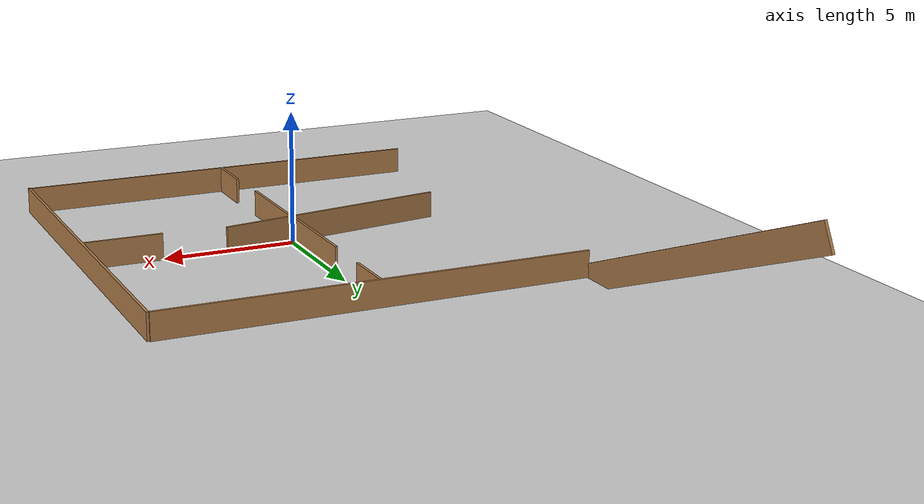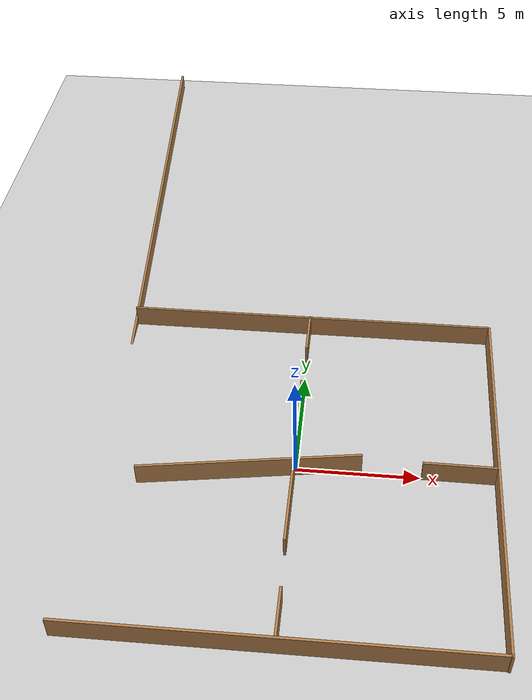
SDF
<sdf version="1.7">
 <world name="default">
  <plugin name="gazebo_ros_state" filename="libgazebo_ros_state.so"/>
  <light name="sun" type="directional">
   <pose>0 0 10 0 -0 0</pose>
   <diffuse>0.8 0.8 0.8 1</diffuse>
   <specular>0.2 0.2 0.2 1</specular>
   <attenuation>
    <range>1000</range>
    <constant>0.9</constant>
    <linear>0.01</linear>
    <quadratic>0.001</quadratic>
   </attenuation>
   <direction>-0.5 0.1 -0.9</direction>
   <spot><inner_angle>0</inner_angle><outer_angle>0</outer_angle><falloff>0</falloff></spot>
  </light>
  <model name="ground_plane">
   <static>1</static>
   <link name="link">
    <collision name="collision">
     <geometry><plane><normal>0 0 1</normal><size>100 100</size></plane></geometry>
     <surface><friction><ode><mu>100</mu><mu2>50</mu2></ode></friction></surface>
    </collision>
    <visual name="visual">
     <cast_shadows>0</cast_shadows>
     <geometry><plane><normal>0 0 1</normal><size>100 100</size></plane></geometry>
     <material>
      <script><uri>model://media/materials/scripts/gazebo.material</uri><name>Gazebo/Grey</name></script>
     </material>
    </visual>
   </link>
  </model>
  <gravity>0 0 -9.8</gravity>
  <magnetic_field>6e-06 2.3e-05 -4.2e-05</magnetic_field>
  <atmosphere type="adiabatic"/>
  <physics type="ode">
   <max_step_size>0.001</max_step_size>
   <real_time_factor>1</real_time_factor>
   <real_time_update_rate>1000</real_time_update_rate>
  </physics>
  <scene><ambient>0.4 0.4 0.4 1</ambient><background>0.7 0.7 0.7 1</background><shadows>1</shadows></scene>
  <spherical_coordinates>
   <surface_model>EARTH_WGS84</surface_model>
   <latitude_deg>0</latitude_deg>
   <longitude_deg>0</longitude_deg>
   <elevation>0</elevation>
   <heading_deg>0</heading_deg>
  </spherical_coordinates>
  <model name="wood_wall_v_left">
   <link name="link">
    <pose>-14.6029 -0.012425 2.19663 -0.090342 0.377552 -0.022301</pose>
    <inertial>
     <mass>0.5167</mass>
     <inertia>
      <ixx>0.00086117</ixx>
      <ixy>0</ixy>
      <ixz>0</ixz>
      <iyy>0.00086117</iyy>
      <iyz>0</iyz>
      <izz>0.00086117</izz>
     </inertia>
    </inertial>
    <gravity>0</gravity>
    <visual name="visual">
     <geometry><box><size>16 0.1 1</size></box></geometry>
     <material>
      <script><uri>file://media/materials/scripts/gazebo.material</uri><name>Gazebo/Wood</name></script>
      <shader type="pixel"><normal_map>__default__</normal_map></shader>
      <ambient>1 1 1 1</ambient>
      <diffuse>1 1 1 1</diffuse>
      <specular>0.2 0.2 0.2 1</specular>
      <emissive>0 0 0 1</emissive>
     </material>
    </visual>
    <collision name="collision">
     <geometry><box><size>16 0.1 1</size></box></geometry>
     <surface>
      <friction>
       <ode><mu>1</mu><mu2>1</mu2><fdir1>0 0 0</fdir1><slip1>0</slip1><slip2>0</slip2></ode>
       <torsional>
        <coefficient>1</coefficient>
        <patch_radius>0</patch_radius>
        <surface_radius>0.01</surface_radius>
        <use_patch_radius>0</use_patch_radius>
        <ode><slip>0</slip></ode>
       </torsional>
      </friction>
      <bounce><restitution_coefficient>0</restitution_coefficient><threshold>1e+06</threshold></bounce>
      <contact>
       <collide_without_contact>0</collide_without_contact>
       <collide_without_contact_bitmask>1</collide_without_contact_bitmask>
       <collide_bitmask>1</collide_bitmask>
       <ode>
        <soft_cfm>0</soft_cfm>
        <soft_erp>0.2</soft_erp>
        <kp>100000</kp>
        <kd>100</kd>
        <max_vel>100</max_vel>
        <min_depth>0.001</min_depth>
       </ode>
       <bullet>
        <split_impulse>1</split_impulse>
        <split_impulse_penetration_threshold>-0.01</split_impulse_penetration_threshold>
        <soft_cfm>0</soft_cfm>
        <soft_erp>0.2</soft_erp>
        <kp>100000</kp>
        <kd>100</kd>
       </bullet>
      </contact>
     </surface>
    </collision>
   </link>
   <static>1</static>
   <pose>-7.94833 -1.03602 -0.001013 0 0 -1.57417</pose>
  </model>
  <model name="wood_wall_h_mid">
   <link name="link">
    <pose>-1.81204 -0.475818 0.499994 0 -0 0.146415</pose>
    <inertial>
     <mass>0.5167</mass>
     <inertia>
      <ixx>0.00086117</ixx>
      <ixy>0</ixy>
      <ixz>0</ixz>
      <iyy>0.00086117</iyy>
      <iyz>0</iyz>
      <izz>0.00086117</izz>
     </inertia>
    </inertial>
    <gravity>0</gravity>
    <visual name="visual">
     <geometry><box><size>9 0.1 1</size></box></geometry>
     <material>
      <script><uri>file://media/materials/scripts/gazebo.material</uri><name>Gazebo/Wood</name></script>
      <shader type="pixel"><normal_map>__default__</normal_map></shader>
      <ambient>1 1 1 1</ambient>
      <diffuse>1 1 1 1</diffuse>
      <specular>0.2 0.2 0.2 1</specular>
      <emissive>0 0 0 1</emissive>
     </material>
    </visual>
    <collision name="collision">
     <geometry><box><size>9 0.1 1</size></box></geometry>
     <surface>
      <friction>
       <ode><mu>1</mu><mu2>1</mu2><fdir1>0 0 0</fdir1><slip1>0</slip1><slip2>0</slip2></ode>
       <torsional>
        <coefficient>1</coefficient>
        <patch_radius>0</patch_radius>
        <surface_radius>0.01</surface_radius>
        <use_patch_radius>0</use_patch_radius>
        <ode><slip>0</slip></ode>
       </torsional>
      </friction>
      <bounce><restitution_coefficient>0</restitution_coefficient><threshold>1e+06</threshold></bounce>
      <contact>
       <collide_without_contact>0</collide_without_contact>
       <collide_without_contact_bitmask>1</collide_without_contact_bitmask>
       <collide_bitmask>1</collide_bitmask>
       <ode>
        <soft_cfm>0</soft_cfm>
        <soft_erp>0.2</soft_erp>
        <kp>100000</kp>
        <kd>100</kd>
        <max_vel>100</max_vel>
        <min_depth>0.001</min_depth>
       </ode>
       <bullet>
        <split_impulse>1</split_impulse>
        <split_impulse_penetration_threshold>-0.01</split_impulse_penetration_threshold>
        <soft_cfm>0</soft_cfm>
        <soft_erp>0.2</soft_erp>
        <kp>100000</kp>
        <kd>100</kd>
       </bullet>
      </contact>
     </surface>
    </collision>
   </link>
   <static>1</static>
   <pose>0.014572 0.013882 -0.001013 0 -0 0</pose>
  </model>
  <model name="wood_wall_v_3">
   <link name="link">
    <pose>-8.099 -0.066094 0.5 0 -0 0</pose>
    <inertial>
     <mass>0.5167</mass>
     <inertia>
      <ixx>0.00086117</ixx>
      <ixy>0</ixy>
      <ixz>0</ixz>
      <iyy>0.00086117</iyy>
      <iyz>0</iyz>
      <izz>0.00086117</izz>
     </inertia>
    </inertial>
    <gravity>0</gravity>
    <visual name="visual">
     <geometry><box><size>4 0.1 1</size></box></geometry>
     <material>
      <script><uri>file://media/materials/scripts/gazebo.material</uri><name>Gazebo/Wood</name></script>
      <shader type="pixel"><normal_map>__default__</normal_map></shader>
      <ambient>1 1 1 1</ambient>
      <diffuse>1 1 1 1</diffuse>
      <specular>0.2 0.2 0.2 1</specular>
      <emissive>0 0 0 1</emissive>
     </material>
    </visual>
    <collision name="collision">
     <geometry><box><size>4 0.1 1</size></box></geometry>
     <surface>
      <friction>
       <ode><mu>1</mu><mu2>1</mu2><fdir1>0 0 0</fdir1><slip1>0</slip1><slip2>0</slip2></ode>
       <torsional>
        <coefficient>1</coefficient>
        <patch_radius>0</patch_radius>
        <surface_radius>0.01</surface_radius>
        <use_patch_radius>0</use_patch_radius>
        <ode><slip>0</slip></ode>
       </torsional>
      </friction>
      <bounce><restitution_coefficient>0</restitution_coefficient><threshold>1e+06</threshold></bounce>
      <contact>
       <collide_without_contact>0</collide_without_contact>
       <collide_without_contact_bitmask>1</collide_without_contact_bitmask>
       <collide_bitmask>1</collide_bitmask>
       <ode>
        <soft_cfm>0</soft_cfm>
        <soft_erp>0.2</soft_erp>
        <kp>100000</kp>
        <kd>100</kd>
        <max_vel>100</max_vel>
        <min_depth>0.001</min_depth>
       </ode>
       <bullet>
        <split_impulse>1</split_impulse>
        <split_impulse_penetration_threshold>-0.01</split_impulse_penetration_threshold>
        <soft_cfm>0</soft_cfm>
        <soft_erp>0.2</soft_erp>
        <kp>100000</kp>
        <kd>100</kd>
       </bullet>
      </contact>
     </surface>
    </collision>
   </link>
   <static>1</static>
   <pose>-0.004359 -10.1259 -0.001013 0 0 -1.57417</pose>
  </model>
  <model name="wood_wall_v_4">
   <link name="link">
    <pose>-8.099 -0.066091 0.5 0 -0 0</pose>
    <inertial>
     <mass>0.5167</mass>
     <inertia>
      <ixx>0.00086117</ixx>
      <ixy>0</ixy>
      <ixz>0</ixz>
      <iyy>0.00086117</iyy>
      <iyz>0</iyz>
      <izz>0.00086117</izz>
     </inertia>
    </inertial>
    <gravity>0</gravity>
    <visual name="visual">
     <geometry><box><size>2 0.1 1</size></box></geometry>
     <material>
      <script><uri>file://media/materials/scripts/gazebo.material</uri><name>Gazebo/Wood</name></script>
      <shader type="pixel"><normal_map>__default__</normal_map></shader>
      <ambient>1 1 1 1</ambient>
      <diffuse>1 1 1 1</diffuse>
      <specular>0.2 0.2 0.2 1</specular>
      <emissive>0 0 0 1</emissive>
     </material>
    </visual>
    <collision name="collision">
     <geometry><box><size>2 0.1 1</size></box></geometry>
     <surface>
      <friction>
       <ode><mu>1</mu><mu2>1</mu2><fdir1>0 0 0</fdir1><slip1>0</slip1><slip2>0</slip2></ode>
       <torsional>
        <coefficient>1</coefficient>
        <patch_radius>0</patch_radius>
        <surface_radius>0.01</surface_radius>
        <use_patch_radius>0</use_patch_radius>
        <ode><slip>0</slip></ode>
       </torsional>
      </friction>
      <bounce><restitution_coefficient>0</restitution_coefficient><threshold>1e+06</threshold></bounce>
      <contact>
       <collide_without_contact>0</collide_without_contact>
       <collide_without_contact_bitmask>1</collide_without_contact_bitmask>
       <collide_bitmask>1</collide_bitmask>
       <ode>
        <soft_cfm>0</soft_cfm>
        <soft_erp>0.2</soft_erp>
        <kp>100000</kp>
        <kd>100</kd>
        <max_vel>100</max_vel>
        <min_depth>0.001</min_depth>
       </ode>
       <bullet>
        <split_impulse>1</split_impulse>
        <split_impulse_penetration_threshold>-0.01</split_impulse_penetration_threshold>
        <soft_cfm>0</soft_cfm>
        <soft_erp>0.2</soft_erp>
        <kp>100000</kp>
        <kd>100</kd>
       </bullet>
      </contact>
     </surface>
    </collision>
   </link>
   <static>1</static>
   <pose>0.04401 -15.0765 -0.001013 0 0 -1.57417</pose>
  </model>
  <model name="wood_wall_v_2">
   <link name="link">
    <pose>-8.099 -0.066093 0.5 0 -0 0</pose>
    <inertial>
     <mass>0.5167</mass>
     <inertia>
      <ixx>0.00086117</ixx>
      <ixy>0</ixy>
      <ixz>0</ixz>
      <iyy>0.00086117</iyy>
      <iyz>0</iyz>
      <izz>0.00086117</izz>
     </inertia>
    </inertial>
    <gravity>0</gravity>
    <visual name="visual">
     <geometry><box><size>4 0.1 1</size></box></geometry>
     <material>
      <script><uri>file://media/materials/scripts/gazebo.material</uri><name>Gazebo/Wood</name></script>
      <shader type="pixel"><normal_map>__default__</normal_map></shader>
      <ambient>1 1 1 1</ambient>
      <diffuse>1 1 1 1</diffuse>
      <specular>0.2 0.2 0.2 1</specular>
      <emissive>0 0 0 1</emissive>
     </material>
    </visual>
    <collision name="collision">
     <geometry><box><size>4 0.1 1</size></box></geometry>
     <surface>
      <friction>
       <ode><mu>1</mu><mu2>1</mu2><fdir1>0 0 0</fdir1><slip1>0</slip1><slip2>0</slip2></ode>
       <torsional>
        <coefficient>1</coefficient>
        <patch_radius>0</patch_radius>
        <surface_radius>0.01</surface_radius>
        <use_patch_radius>0</use_patch_radius>
        <ode><slip>0</slip></ode>
       </torsional>
      </friction>
      <bounce><restitution_coefficient>0</restitution_coefficient><threshold>1e+06</threshold></bounce>
      <contact>
       <collide_without_contact>0</collide_without_contact>
       <collide_without_contact_bitmask>1</collide_without_contact_bitmask>
       <collide_bitmask>1</collide_bitmask>
       <ode>
        <soft_cfm>0</soft_cfm>
        <soft_erp>0.2</soft_erp>
        <kp>100000</kp>
        <kd>100</kd>
        <max_vel>100</max_vel>
        <min_depth>0.001</min_depth>
       </ode>
       <bullet>
        <split_impulse>1</split_impulse>
        <split_impulse_penetration_threshold>-0.01</split_impulse_penetration_threshold>
        <soft_cfm>0</soft_cfm>
        <soft_erp>0.2</soft_erp>
        <kp>100000</kp>
        <kd>100</kd>
       </bullet>
      </contact>
     </surface>
    </collision>
   </link>
   <static>1</static>
   <pose>-0.038413 -6.06315 -0.001013 0 0 -1.57417</pose>
  </model>
  <model name="wood_wall_v_1">
   <link name="link">
    <pose>-8.099 -0.066096 0.5 0 -0 0</pose>
    <inertial>
     <mass>0.5167</mass>
     <inertia>
      <ixx>0.00086117</ixx>
      <ixy>0</ixy>
      <ixz>0</ixz>
      <iyy>0.00086117</iyy>
      <iyz>0</iyz>
      <izz>0.00086117</izz>
     </inertia>
    </inertial>
    <gravity>0</gravity>
    <visual name="visual">
     <geometry><box><size>2 0.1 1</size></box></geometry>
     <material>
      <script><uri>file://media/materials/scripts/gazebo.material</uri><name>Gazebo/Wood</name></script>
      <shader type="pixel"><normal_map>__default__</normal_map></shader>
      <ambient>1 1 1 1</ambient>
      <diffuse>1 1 1 1</diffuse>
      <specular>0.2 0.2 0.2 1</specular>
      <emissive>0 0 0 1</emissive>
     </material>
    </visual>
    <collision name="collision">
     <geometry><box><size>2 0.1 1</size></box></geometry>
     <surface>
      <friction>
       <ode><mu>1</mu><mu2>1</mu2><fdir1>0 0 0</fdir1><slip1>0</slip1><slip2>0</slip2></ode>
       <torsional>
        <coefficient>1</coefficient>
        <patch_radius>0</patch_radius>
        <surface_radius>0.01</surface_radius>
        <use_patch_radius>0</use_patch_radius>
        <ode><slip>0</slip></ode>
       </torsional>
      </friction>
      <bounce><restitution_coefficient>0</restitution_coefficient><threshold>1e+06</threshold></bounce>
      <contact>
       <collide_without_contact>0</collide_without_contact>
       <collide_without_contact_bitmask>1</collide_without_contact_bitmask>
       <collide_bitmask>1</collide_bitmask>
       <ode>
        <soft_cfm>0</soft_cfm>
        <soft_erp>0.2</soft_erp>
        <kp>100000</kp>
        <kd>100</kd>
        <max_vel>100</max_vel>
        <min_depth>0.001</min_depth>
       </ode>
       <bullet>
        <split_impulse>1</split_impulse>
        <split_impulse_penetration_threshold>-0.01</split_impulse_penetration_threshold>
        <soft_cfm>0</soft_cfm>
        <soft_erp>0.2</soft_erp>
        <kp>100000</kp>
        <kd>100</kd>
       </bullet>
      </contact>
     </surface>
    </collision>
   </link>
   <static>1</static>
   <pose>0.020397 -1.09665 -0.001013 0 0 -1.57417</pose>
  </model>
  <model name="wood_wall_h_mid_clone">
   <link name="link">
    <pose>-1.81204 -0.475818 0.499994 0 -0 0.146415</pose>
    <inertial>
     <mass>0.5167</mass>
     <inertia>
      <ixx>0.00086117</ixx>
      <ixy>0</ixy>
      <ixz>0</ixz>
      <iyy>0.00086117</iyy>
      <iyz>0</iyz>
      <izz>0.00086117</izz>
     </inertia>
    </inertial>
    <visual name="visual">
     <geometry><box><size>3 0.1 1</size></box></geometry>
     <material>
      <script><uri>file://media/materials/scripts/gazebo.material</uri><name>Gazebo/Wood</name></script>
      <shader type="pixel"><normal_map>__default__</normal_map></shader>
      <ambient>1 1 1 1</ambient>
      <diffuse>1 1 1 1</diffuse>
      <specular>0.2 0.2 0.2 1</specular>
      <emissive>0 0 0 1</emissive>
     </material>
    </visual>
    <collision name="collision">
     <geometry><box><size>3 0.1 1</size></box></geometry>
     <surface>
      <friction>
       <ode><mu>1</mu><mu2>1</mu2><fdir1>0 0 0</fdir1><slip1>0</slip1><slip2>0</slip2></ode>
       <torsional>
        <coefficient>1</coefficient>
        <patch_radius>0</patch_radius>
        <surface_radius>0.01</surface_radius>
        <use_patch_radius>0</use_patch_radius>
        <ode><slip>0</slip></ode>
       </torsional>
      </friction>
      <bounce><restitution_coefficient>0</restitution_coefficient><threshold>1e+06</threshold></bounce>
      <contact>
       <collide_without_contact>0</collide_without_contact>
       <collide_without_contact_bitmask>1</collide_without_contact_bitmask>
       <collide_bitmask>1</collide_bitmask>
       <ode>
        <soft_cfm>0</soft_cfm>
        <soft_erp>0.2</soft_erp>
        <kp>100000</kp>
        <kd>100</kd>
        <max_vel>100</max_vel>
        <min_depth>0.001</min_depth>
       </ode>
       <bullet>
        <split_impulse>1</split_impulse>
        <split_impulse_penetration_threshold>-0.01</split_impulse_penetration_threshold>
        <soft_cfm>0</soft_cfm>
        <soft_erp>0.2</soft_erp>
        <kp>100000</kp>
        <kd>100</kd>
       </bullet>
      </contact>
     </surface>
    </collision>
   </link>
   <static>1</static>
   <pose>8.40479 0.180967 -0.001013 0 0 -0.155021</pose>
  </model>
  <model name="wood_wall_v_right">
   <link name="link">
    <pose>-1 -0.066097 0.5 0 -0 0</pose>
    <inertial>
     <mass>0.5167</mass>
     <inertia>
      <ixx>0.00086117</ixx>
      <ixy>0</ixy>
      <ixz>0</ixz>
      <iyy>0.00086117</iyy>
      <iyz>0</iyz>
      <izz>0.00086117</izz>
     </inertia>
    </inertial>
    <gravity>0</gravity>
    <visual name="visual">
     <geometry><box><size>16 0.1 1</size></box></geometry>
     <material>
      <script><uri>file://media/materials/scripts/gazebo.material</uri><name>Gazebo/Wood</name></script>
      <shader type="pixel"><normal_map>__default__</normal_map></shader>
      <ambient>1 1 1 1</ambient>
      <diffuse>1 1 1 1</diffuse>
      <specular>0.2 0.2 0.2 1</specular>
      <emissive>0 0 0 1</emissive>
     </material>
    </visual>
    <collision name="collision">
     <geometry><box><size>16 0.1 1</size></box></geometry>
     <surface>
      <friction>
       <ode><mu>1</mu><mu2>1</mu2><fdir1>0 0 0</fdir1><slip1>0</slip1><slip2>0</slip2></ode>
       <torsional>
        <coefficient>1</coefficient>
        <patch_radius>0</patch_radius>
        <surface_radius>0.01</surface_radius>
        <use_patch_radius>0</use_patch_radius>
        <ode><slip>0</slip></ode>
       </torsional>
      </friction>
      <bounce><restitution_coefficient>0</restitution_coefficient><threshold>1e+06</threshold></bounce>
      <contact>
       <collide_without_contact>0</collide_without_contact>
       <collide_without_contact_bitmask>1</collide_without_contact_bitmask>
       <collide_bitmask>1</collide_bitmask>
       <ode>
        <soft_cfm>0</soft_cfm>
        <soft_erp>0.2</soft_erp>
        <kp>100000</kp>
        <kd>100</kd>
        <max_vel>100</max_vel>
        <min_depth>0.001</min_depth>
       </ode>
       <bullet>
        <split_impulse>1</split_impulse>
        <split_impulse_penetration_threshold>-0.01</split_impulse_penetration_threshold>
        <soft_cfm>0</soft_cfm>
        <soft_erp>0.2</soft_erp>
        <kp>100000</kp>
        <kd>100</kd>
       </bullet>
      </contact>
     </surface>
    </collision>
   </link>
   <static>1</static>
   <pose>8.08186 -1.03408 -0.001013 0 0 -1.57417</pose>
  </model>
  <model name="wood_wall_h_bottom">
   <link name="link">
    <pose>-1 -0.066097 0.5 0 -0 0</pose>
    <inertial>
     <mass>0.5167</mass>
     <inertia>
      <ixx>0.00086117</ixx>
      <ixy>0</ixy>
      <ixz>0</ixz>
      <iyy>0.00086117</iyy>
      <iyz>0</iyz>
      <izz>0.00086117</izz>
     </inertia>
    </inertial>
    <gravity>0</gravity>
    <visual name="visual">
     <geometry><box><size>16 0.1 1</size></box></geometry>
     <material>
      <script><uri>file://media/materials/scripts/gazebo.material</uri><name>Gazebo/Wood</name></script>
      <shader type="pixel"><normal_map>__default__</normal_map></shader>
      <ambient>1 1 1 1</ambient>
      <diffuse>1 1 1 1</diffuse>
      <specular>0.2 0.2 0.2 1</specular>
      <emissive>0 0 0 1</emissive>
     </material>
    </visual>
    <collision name="collision">
     <geometry><box><size>16 0.1 1</size></box></geometry>
     <surface>
      <friction>
       <ode><mu>1</mu><mu2>1</mu2><fdir1>0 0 0</fdir1><slip1>0</slip1><slip2>0</slip2></ode>
       <torsional>
        <coefficient>1</coefficient>
        <patch_radius>0</patch_radius>
        <surface_radius>0.01</surface_radius>
        <use_patch_radius>0</use_patch_radius>
        <ode><slip>0</slip></ode>
       </torsional>
      </friction>
      <bounce><restitution_coefficient>0</restitution_coefficient><threshold>1e+06</threshold></bounce>
      <contact>
       <collide_without_contact>0</collide_without_contact>
       <collide_without_contact_bitmask>1</collide_without_contact_bitmask>
       <collide_bitmask>1</collide_bitmask>
       <ode>
        <soft_cfm>0</soft_cfm>
        <soft_erp>0.2</soft_erp>
        <kp>100000</kp>
        <kd>100</kd>
        <max_vel>100</max_vel>
        <min_depth>0.001</min_depth>
       </ode>
       <bullet>
        <split_impulse>1</split_impulse>
        <split_impulse_penetration_threshold>-0.01</split_impulse_penetration_threshold>
        <soft_cfm>0</soft_cfm>
        <soft_erp>0.2</soft_erp>
        <kp>100000</kp>
        <kd>100</kd>
       </bullet>
      </contact>
     </surface>
    </collision>
   </link>
   <static>1</static>
   <pose>0.995856 -7.88728 -0.001013 0 -0 0</pose>
  </model>
  <model name="wood_wall_h_top">
   <link name="link">
    <pose>-1 -0.066097 0.5 0 -0 0</pose>
    <inertial>
     <mass>0.5167</mass>
     <inertia>
      <ixx>0.00086117</ixx>
      <ixy>0</ixy>
      <ixz>0</ixz>
      <iyy>0.00086117</iyy>
      <iyz>0</iyz>
      <izz>0.00086117</izz>
     </inertia>
    </inertial>
    <gravity>0</gravity>
    <visual name="visual">
     <geometry><box><size>16 0.1 1</size></box></geometry>
     <material>
      <script><uri>file://media/materials/scripts/gazebo.material</uri><name>Gazebo/Wood</name></script>
      <shader type="pixel"><normal_map>__default__</normal_map></shader>
      <ambient>1 1 1 1</ambient>
      <diffuse>1 1 1 1</diffuse>
      <specular>0.2 0.2 0.2 1</specular>
      <emissive>0 0 0 1</emissive>
     </material>
    </visual>
    <collision name="collision">
     <geometry><box><size>16 0.1 1</size></box></geometry>
     <surface>
      <friction>
       <ode><mu>1</mu><mu2>1</mu2><fdir1>0 0 0</fdir1><slip1>0</slip1><slip2>0</slip2></ode>
       <torsional>
        <coefficient>1</coefficient>
        <patch_radius>0</patch_radius>
        <surface_radius>0.01</surface_radius>
        <use_patch_radius>0</use_patch_radius>
        <ode><slip>0</slip></ode>
       </torsional>
      </friction>
      <bounce><restitution_coefficient>0</restitution_coefficient><threshold>1e+06</threshold></bounce>
      <contact>
       <collide_without_contact>0</collide_without_contact>
       <collide_without_contact_bitmask>1</collide_without_contact_bitmask>
       <collide_bitmask>1</collide_bitmask>
       <ode>
        <soft_cfm>0</soft_cfm>
        <soft_erp>0.2</soft_erp>
        <kp>100000</kp>
        <kd>100</kd>
        <max_vel>100</max_vel>
        <min_depth>0.001</min_depth>
       </ode>
       <bullet>
        <split_impulse>1</split_impulse>
        <split_impulse_penetration_threshold>-0.01</split_impulse_penetration_threshold>
        <soft_cfm>0</soft_cfm>
        <soft_erp>0.2</soft_erp>
        <kp>100000</kp>
        <kd>100</kd>
       </bullet>
      </contact>
     </surface>
    </collision>
   </link>
   <static>1</static>
   <pose>1.00024 8.03189 -0.001013 0 -0 0</pose>
  </model>
 </world>
</sdf>
